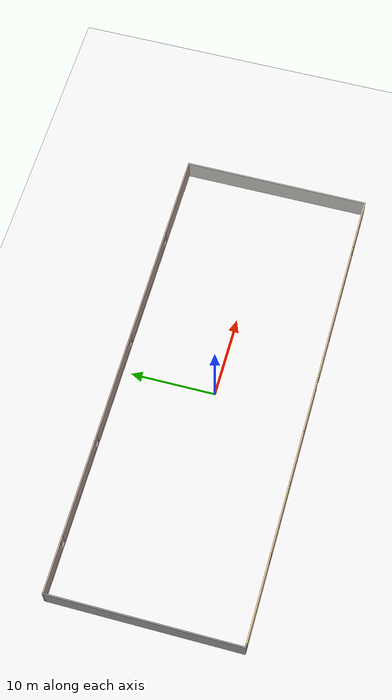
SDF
<sdf version="1.6">
 <world name="default">
  <light name="sun" type="point">
   <pose>0 0 3 0 -0 0</pose>
   <diffuse>0.9 0.9 0.9 1</diffuse>
   <specular>0.1 0.1 0.1 1</specular>
   <attenuation>
    <range>1000</range>
    <constant>0.9</constant>
    <linear>0.01</linear>
    <quadratic>0.001</quadratic>
   </attenuation>
   <direction>0 0 -1</direction>
  </light>
  <model name="ground_plane">
   <static>1</static>
   <link name="link">
    <collision name="collision">
     <geometry><plane><normal>0 0 1</normal><size>100 100</size></plane></geometry>
     <surface><friction><ode><mu>100</mu><mu2>50</mu2></ode></friction></surface>
    </collision>
    <visual name="visual">
     <geometry><plane><normal>0 0 1</normal><size>100 100</size></plane></geometry>
     <material>
      <script><uri>file://media/materials/scripts/gazebo.material</uri><name>Gazebo/White</name></script>
      <diffuse>0.5 0.5 0.5 1</diffuse>
     </material>
    </visual>
   </link>
  </model>
  <gravity>0 0 -9.8</gravity>
  <magnetic_field>6e-06 2.3e-05 -4.2e-05</magnetic_field>
  <atmosphere type="adiabatic"/>
  <physics name="default_physics" default="0" type="ode">
   <max_step_size>0.001</max_step_size>
   <real_time_factor>1</real_time_factor>
   <real_time_update_rate>1000</real_time_update_rate>
  </physics>
  <scene><ambient>0.4 0.4 0.4 1</ambient><background>0.7 0.7 0.7 1</background><shadows>1</shadows></scene>
  <spherical_coordinates>
   <surface_model>EARTH_WGS84</surface_model>
   <latitude_deg>0</latitude_deg>
   <longitude_deg>0</longitude_deg>
   <elevation>0</elevation>
   <heading_deg>0</heading_deg>
  </spherical_coordinates>
  <model name="room">
   <pose>0.011217 -0.0064 0 0 -0 0</pose>
   <link name="Wall_16">
    <pose>0.250001 -11.05 0 0 -0 0</pose>
    <visual name="Wall_16_Visual_0">
     <pose>-23.4976 0 1.25 0 -0 0</pose>
     <geometry><box><size>9.50471 0.15 2.5</size></box></geometry>
     <material>
      <script><uri>file://media/materials/scripts/gazebo.material</uri><name>Gazebo/Grey</name></script>
      <ambient>0.921569 0.807843 0.615686 1</ambient>
     </material>
    </visual>
    <collision name="Wall_16_Collision_0">
     <geometry><box><size>9.50471 0.15 2.5</size></box></geometry>
     <pose>-23.4976 0 1.25 0 -0 0</pose>
    </collision>
    <visual name="Wall_16_Visual_1">
     <pose>6.58031 0 1.25 0 -0 0</pose>
     <geometry><box><size>4.54044 0.15 2.5</size></box></geometry>
     <material>
      <script><uri>file://media/materials/scripts/gazebo.material</uri><name>Gazebo/Grey</name></script>
      <ambient>0.921569 0.807843 0.615686 1</ambient>
     </material>
    </visual>
    <collision name="Wall_16_Collision_1">
     <geometry><box><size>4.54044 0.15 2.5</size></box></geometry>
     <pose>6.58031 0 1.25 0 -0 0</pose>
    </collision>
    <visual name="Wall_16_Visual_2">
     <pose>-7.6676 0 0.25 0 -0 0</pose>
     <geometry><box><size>22.1554 0.15 0.5</size></box></geometry>
     <material>
      <script><uri>file://media/materials/scripts/gazebo.material</uri><name>Gazebo/Grey</name></script>
      <ambient>0.921569 0.807843 0.615686 1</ambient>
     </material>
    </visual>
    <collision name="Wall_16_Collision_2">
     <geometry><box><size>22.1554 0.15 0.5</size></box></geometry>
     <pose>-7.6676 0 0.25 0 -0 0</pose>
    </collision>
    <visual name="Wall_16_Visual_3">
     <pose>18.5503 0 0.25 0 -0 0</pose>
     <geometry><box><size>19.3995 0.15 0.5</size></box></geometry>
     <material>
      <script><uri>file://media/materials/scripts/gazebo.material</uri><name>Gazebo/Grey</name></script>
      <ambient>0.921569 0.807843 0.615686 1</ambient>
     </material>
    </visual>
    <collision name="Wall_16_Collision_3">
     <geometry><box><size>19.3995 0.15 0.5</size></box></geometry>
     <pose>18.5503 0 0.25 0 -0 0</pose>
    </collision>
    <visual name="Wall_16_Visual_4">
     <pose>-14.1214 0 1.5 0 -0 0</pose>
     <geometry><box><size>7.6477 0.15 2</size></box></geometry>
     <material>
      <script><uri>file://media/materials/scripts/gazebo.material</uri><name>Gazebo/Grey</name></script>
      <ambient>0.921569 0.807843 0.615686 1</ambient>
     </material>
    </visual>
    <collision name="Wall_16_Collision_4">
     <geometry><box><size>7.6477 0.15 2</size></box></geometry>
     <pose>-14.1214 0 1.5 0 -0 0</pose>
    </collision>
    <visual name="Wall_16_Visual_5">
     <pose>-6.3576 0 1.5 0 -0 0</pose>
     <geometry><box><size>6.27998 0.15 2</size></box></geometry>
     <material>
      <script><uri>file://media/materials/scripts/gazebo.material</uri><name>Gazebo/Grey</name></script>
      <ambient>0.921569 0.807843 0.615686 1</ambient>
     </material>
    </visual>
    <collision name="Wall_16_Collision_5">
     <geometry><box><size>6.27998 0.15 2</size></box></geometry>
     <pose>-6.3576 0 1.5 0 -0 0</pose>
    </collision>
    <visual name="Wall_16_Visual_6">
     <pose>0.496241 0 1.5 0 -0 0</pose>
     <geometry><box><size>5.82771 0.15 2</size></box></geometry>
     <material>
      <script><uri>file://media/materials/scripts/gazebo.material</uri><name>Gazebo/Grey</name></script>
      <ambient>0.921569 0.807843 0.615686 1</ambient>
     </material>
    </visual>
    <collision name="Wall_16_Collision_6">
     <geometry><box><size>5.82771 0.15 2</size></box></geometry>
     <pose>0.496241 0 1.5 0 -0 0</pose>
    </collision>
    <visual name="Wall_16_Visual_7">
     <pose>0.496241 0 1.5 0 -0 0</pose>
     <geometry><box><size>5.82771 0.15 2</size></box></geometry>
     <material>
      <script><uri>file://media/materials/scripts/gazebo.material</uri><name>Gazebo/Grey</name></script>
      <ambient>0.921569 0.807843 0.615686 1</ambient>
     </material>
    </visual>
    <collision name="Wall_16_Collision_7">
     <geometry><box><size>5.82771 0.15 2</size></box></geometry>
     <pose>0.496241 0 1.5 0 -0 0</pose>
    </collision>
    <visual name="Wall_16_Visual_8">
     <pose>15.2846 0 1.5 0 -0 0</pose>
     <geometry><box><size>11.2681 0.15 2</size></box></geometry>
     <material>
      <script><uri>file://media/materials/scripts/gazebo.material</uri><name>Gazebo/Grey</name></script>
      <ambient>0.921569 0.807843 0.615686 1</ambient>
     </material>
    </visual>
    <collision name="Wall_16_Collision_8">
     <geometry><box><size>11.2681 0.15 2</size></box></geometry>
     <pose>15.2846 0 1.5 0 -0 0</pose>
    </collision>
    <visual name="Wall_16_Visual_9">
     <pose>24.9843 0 1.5 0 -0 0</pose>
     <geometry><box><size>6.53133 0.15 2</size></box></geometry>
     <material>
      <script><uri>file://media/materials/scripts/gazebo.material</uri><name>Gazebo/Grey</name></script>
      <ambient>0.921569 0.807843 0.615686 1</ambient>
     </material>
    </visual>
    <collision name="Wall_16_Collision_9">
     <geometry><box><size>6.53133 0.15 2</size></box></geometry>
     <pose>24.9843 0 1.5 0 -0 0</pose>
    </collision>
    <visual name="Wall_16_Visual_10">
     <pose>-18.3453 0 1.9 0 -0 0</pose>
     <geometry><box><size>0.8 0.15 1.2</size></box></geometry>
     <material>
      <script><uri>file://media/materials/scripts/gazebo.material</uri><name>Gazebo/Grey</name></script>
      <ambient>0.921569 0.807843 0.615686 1</ambient>
     </material>
    </visual>
    <collision name="Wall_16_Collision_10">
     <geometry><box><size>0.8 0.15 1.2</size></box></geometry>
     <pose>-18.3453 0 1.9 0 -0 0</pose>
    </collision>
    <visual name="Wall_16_Visual_11">
     <pose>9.25053 0 1.9 0 -0 0</pose>
     <geometry><box><size>0.8 0.15 1.2</size></box></geometry>
     <material>
      <script><uri>file://media/materials/scripts/gazebo.material</uri><name>Gazebo/Grey</name></script>
      <ambient>0.921569 0.807843 0.615686 1</ambient>
     </material>
    </visual>
    <collision name="Wall_16_Collision_11">
     <geometry><box><size>0.8 0.15 1.2</size></box></geometry>
     <pose>9.25053 0 1.9 0 -0 0</pose>
    </collision>
    <visual name="Wall_16_Visual_12">
     <pose>-9.89759 0 1.9 0 -0 0</pose>
     <geometry><box><size>0.8 0.15 1.2</size></box></geometry>
     <material>
      <script><uri>file://media/materials/scripts/gazebo.material</uri><name>Gazebo/Grey</name></script>
      <ambient>0.921569 0.807843 0.615686 1</ambient>
     </material>
    </visual>
    <collision name="Wall_16_Collision_12">
     <geometry><box><size>0.8 0.15 1.2</size></box></geometry>
     <pose>-9.89759 0 1.9 0 -0 0</pose>
    </collision>
    <visual name="Wall_16_Visual_13">
     <pose>-2.81761 0 1.9 0 -0 0</pose>
     <geometry><box><size>0.8 0.15 1.2</size></box></geometry>
     <material>
      <script><uri>file://media/materials/scripts/gazebo.material</uri><name>Gazebo/Grey</name></script>
      <ambient>0.921569 0.807843 0.615686 1</ambient>
     </material>
    </visual>
    <collision name="Wall_16_Collision_13">
     <geometry><box><size>0.8 0.15 1.2</size></box></geometry>
     <pose>-2.81761 0 1.9 0 -0 0</pose>
    </collision>
    <visual name="Wall_16_Visual_14">
     <pose>21.3187 0 1.9 0 -0 0</pose>
     <geometry><box><size>0.8 0.15 1.2</size></box></geometry>
     <material>
      <script><uri>file://media/materials/scripts/gazebo.material</uri><name>Gazebo/Grey</name></script>
      <ambient>0.921569 0.807843 0.615686 1</ambient>
     </material>
    </visual>
    <collision name="Wall_16_Collision_14">
     <geometry><box><size>0.8 0.15 1.2</size></box></geometry>
     <pose>21.3187 0 1.9 0 -0 0</pose>
    </collision>
    <visual name="Wall_16_Visual_15">
     <pose>3.86009 0 2.25 0 -0 0</pose>
     <geometry><box><size>0.9 0.15 0.5</size></box></geometry>
     <material>
      <script><uri>file://media/materials/scripts/gazebo.material</uri><name>Gazebo/Grey</name></script>
      <ambient>0.921569 0.807843 0.615686 1</ambient>
     </material>
    </visual>
    <collision name="Wall_16_Collision_15">
     <geometry><box><size>0.9 0.15 0.5</size></box></geometry>
     <pose>3.86009 0 2.25 0 -0 0</pose>
    </collision>
    <visual name="Wall_16_Visual_16">
     <pose>3.86009 0 2.25 0 -0 0</pose>
     <geometry><box><size>0.9 0.15 0.5</size></box></geometry>
     <material>
      <script><uri>file://media/materials/scripts/gazebo.material</uri><name>Gazebo/Grey</name></script>
      <ambient>0.921569 0.807843 0.615686 1</ambient>
     </material>
    </visual>
    <collision name="Wall_16_Collision_16">
     <geometry><box><size>0.9 0.15 0.5</size></box></geometry>
     <pose>3.86009 0 2.25 0 -0 0</pose>
    </collision>
   </link>
   <link name="Wall_17">
    <collision name="Wall_17_Collision">
     <geometry><box><size>22.25 0.15 2.5</size></box></geometry>
     <pose>0 0 1.25 0 -0 0</pose>
    </collision>
    <visual name="Wall_17_Visual">
     <pose>0 0 1.25 0 -0 0</pose>
     <geometry><box><size>22.25 0.15 2.5</size></box></geometry>
     <material>
      <script><uri>file://media/materials/scripts/gazebo.material</uri><name>Gazebo/CeilingTiled</name></script>
      <ambient>1 1 1 1</ambient>
     </material>
    </visual>
    <pose>28.425 0 0 0 -0 1.5708</pose>
   </link>
   <link name="Wall_18">
    <pose>1e-06 11.05 0 0 -0 3.14159</pose>
    <visual name="Wall_18_Visual_0">
     <pose>-23.3034 0 1.25 0 -0 0</pose>
     <geometry><box><size>10.3931 0.15 2.5</size></box></geometry>
     <material>
      <script><uri>file://media/materials/scripts/gazebo.material</uri><name>Gazebo/Grey</name></script>
      <ambient>0.760784 0.662745 0.627451 1</ambient>
     </material>
    </visual>
    <collision name="Wall_18_Collision_0">
     <geometry><box><size>10.3931 0.15 2.5</size></box></geometry>
     <pose>-23.3034 0 1.25 0 -0 0</pose>
    </collision>
    <visual name="Wall_18_Visual_1">
     <pose>5.19656 0 0.25 0 -0 0</pose>
     <geometry><box><size>46.6069 0.15 0.5</size></box></geometry>
     <material>
      <script><uri>file://media/materials/scripts/gazebo.material</uri><name>Gazebo/Grey</name></script>
      <ambient>0.760784 0.662745 0.627451 1</ambient>
     </material>
    </visual>
    <collision name="Wall_18_Collision_1">
     <geometry><box><size>46.6069 0.15 0.5</size></box></geometry>
     <pose>5.19656 0 0.25 0 -0 0</pose>
    </collision>
    <visual name="Wall_18_Visual_2">
     <pose>-10.5062 0 1.5 0 -0 0</pose>
     <geometry><box><size>13.6013 0.15 2</size></box></geometry>
     <material>
      <script><uri>file://media/materials/scripts/gazebo.material</uri><name>Gazebo/Grey</name></script>
      <ambient>0.760784 0.662745 0.627451 1</ambient>
     </material>
    </visual>
    <collision name="Wall_18_Collision_2">
     <geometry><box><size>13.6013 0.15 2</size></box></geometry>
     <pose>-10.5062 0 1.5 0 -0 0</pose>
    </collision>
    <visual name="Wall_18_Visual_3">
     <pose>3.25147 0 1.5 0 -0 0</pose>
     <geometry><box><size>12.314 0.15 2</size></box></geometry>
     <material>
      <script><uri>file://media/materials/scripts/gazebo.material</uri><name>Gazebo/Grey</name></script>
      <ambient>0.760784 0.662745 0.627451 1</ambient>
     </material>
    </visual>
    <collision name="Wall_18_Collision_3">
     <geometry><box><size>12.314 0.15 2</size></box></geometry>
     <pose>3.25147 0 1.5 0 -0 0</pose>
    </collision>
    <visual name="Wall_18_Visual_4">
     <pose>15.9633 0 1.5 0 -0 0</pose>
     <geometry><box><size>11.5095 0.15 2</size></box></geometry>
     <material>
      <script><uri>file://media/materials/scripts/gazebo.material</uri><name>Gazebo/Grey</name></script>
      <ambient>0.760784 0.662745 0.627451 1</ambient>
     </material>
    </visual>
    <collision name="Wall_18_Collision_4">
     <geometry><box><size>11.5095 0.15 2</size></box></geometry>
     <pose>15.9633 0 1.5 0 -0 0</pose>
    </collision>
    <visual name="Wall_18_Visual_5">
     <pose>25.509 0 1.5 0 -0 0</pose>
     <geometry><box><size>5.982 0.15 2</size></box></geometry>
     <material>
      <script><uri>file://media/materials/scripts/gazebo.material</uri><name>Gazebo/Grey</name></script>
      <ambient>0.760784 0.662745 0.627451 1</ambient>
     </material>
    </visual>
    <collision name="Wall_18_Collision_5">
     <geometry><box><size>5.982 0.15 2</size></box></geometry>
     <pose>25.509 0 1.5 0 -0 0</pose>
    </collision>
    <visual name="Wall_18_Visual_6">
     <pose>-17.7069 0 1.9 0 -0 0</pose>
     <geometry><box><size>0.8 0.15 1.2</size></box></geometry>
     <material>
      <script><uri>file://media/materials/scripts/gazebo.material</uri><name>Gazebo/Grey</name></script>
      <ambient>0.760784 0.662745 0.627451 1</ambient>
     </material>
    </visual>
    <collision name="Wall_18_Collision_6">
     <geometry><box><size>0.8 0.15 1.2</size></box></geometry>
     <pose>-17.7069 0 1.9 0 -0 0</pose>
    </collision>
    <visual name="Wall_18_Visual_7">
     <pose>-3.30555 0 1.9 0 -0 0</pose>
     <geometry><box><size>0.8 0.15 1.2</size></box></geometry>
     <material>
      <script><uri>file://media/materials/scripts/gazebo.material</uri><name>Gazebo/Grey</name></script>
      <ambient>0.760784 0.662745 0.627451 1</ambient>
     </material>
    </visual>
    <collision name="Wall_18_Collision_7">
     <geometry><box><size>0.8 0.15 1.2</size></box></geometry>
     <pose>-3.30555 0 1.9 0 -0 0</pose>
    </collision>
    <visual name="Wall_18_Visual_8">
     <pose>9.8085 0 1.9 0 -0 0</pose>
     <geometry><box><size>0.8 0.15 1.2</size></box></geometry>
     <material>
      <script><uri>file://media/materials/scripts/gazebo.material</uri><name>Gazebo/Grey</name></script>
      <ambient>0.760784 0.662745 0.627451 1</ambient>
     </material>
    </visual>
    <collision name="Wall_18_Collision_8">
     <geometry><box><size>0.8 0.15 1.2</size></box></geometry>
     <pose>9.8085 0 1.9 0 -0 0</pose>
    </collision>
    <visual name="Wall_18_Visual_9">
     <pose>22.118 0 1.9 0 -0 0</pose>
     <geometry><box><size>0.8 0.15 1.2</size></box></geometry>
     <material>
      <script><uri>file://media/materials/scripts/gazebo.material</uri><name>Gazebo/Grey</name></script>
      <ambient>0.760784 0.662745 0.627451 1</ambient>
     </material>
    </visual>
    <collision name="Wall_18_Collision_9">
     <geometry><box><size>0.8 0.15 1.2</size></box></geometry>
     <pose>22.118 0 1.9 0 -0 0</pose>
    </collision>
   </link>
   <link name="Wall_19">
    <collision name="Wall_19_Collision">
     <geometry><box><size>22.25 0.15 2.5</size></box></geometry>
     <pose>0 0 1.25 0 -0 0</pose>
    </collision>
    <visual name="Wall_19_Visual">
     <pose>0 0 1.25 0 -0 0</pose>
     <geometry><box><size>22.25 0.15 2.5</size></box></geometry>
     <material>
      <script><uri>file://media/materials/scripts/gazebo.material</uri><name>Gazebo/Grey</name></script>
      <ambient>1 1 1 1</ambient>
     </material>
    </visual>
    <pose>-28.425 0 0 0 0 -1.5708</pose>
   </link>
   <link name="Wall_20">
    <collision name="Wall_20_Collision">
     <geometry><box><size>0.65 0.15 2.5</size></box></geometry>
     <pose>0 0 1.25 0 -0 0</pose>
    </collision>
    <visual name="Wall_20_Visual">
     <pose>0 0 1.25 0 -0 0</pose>
     <geometry><box><size>0.65 0.15 2.5</size></box></geometry>
     <material>
      <script><uri>file://media/materials/scripts/gazebo.material</uri><name>Gazebo/Grey</name></script>
      <ambient>1 1 1 1</ambient>
     </material>
    </visual>
    <pose>-28.175 -11.05 0 0 -0 0</pose>
   </link>
   <static>1</static>
  </model>
 </world>
</sdf>
